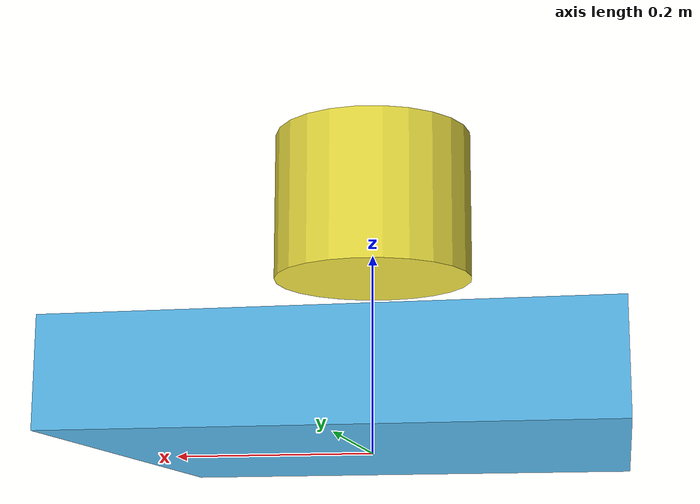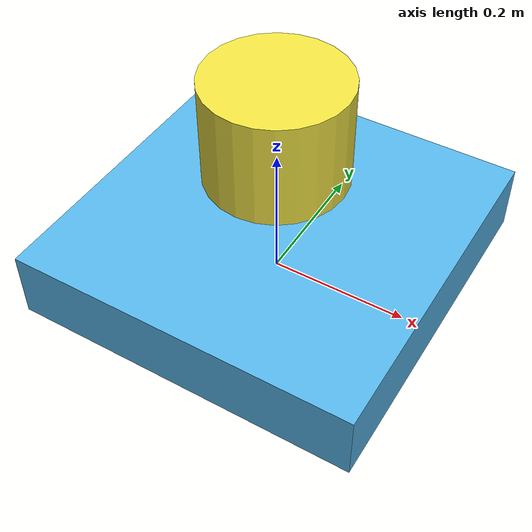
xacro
<?xml version="1.0"?>
<robot xmlns:xacro="http://www.ros.org/wiki/xacro" name="example">
  <xacro:arg name="gpu" default="false"/>
  <xacro:property name="gpu" value="$(arg gpu)" />

  <!-- Base Footprint -->
  <link name="base_footprint" />

  <!-- Base Link -->
  <joint name="footprint" type="fixed" >
   <parent link="base_footprint" />
    <child link="base_link" />
    <origin xyz="0 0 0.05" rpy="0 0 0" />
  </joint>
  <link name="base_link" >
    <visual>
      <geometry>
        <box size="0.5 0.5 0.1" />
      </geometry>
    </visual>
    <collision>
      <geometry>
        <box size="0.5 0.5 0.1" />
      </geometry>
    </collision>
    <inertial>
      <origin xyz="0 0 0"/>
      <mass value="10"/>
      <inertia ixx="3.0" ixy="0.0" ixz="0.0"
               iyy="3.0" iyz="0.0"
               izz="3.0" />
    </inertial>
  </link>

    <!-- Base RSLidar -->
    <joint name="rslidar" type="fixed" >
     <parent link="base_link" />
      <child link="base_rslidar" />
      <origin xyz="0 0 0.2" rpy="0 0 0" />
    </joint>

    <link name="base_rslidar" >
    </link>

    <xacro:include filename="$(find rslidar_sdk)/config/urdf/RSBPearl_raysim.urdf.xacro"/>
    <xacro:RSBPearl_raysim parent="base_rslidar" name="rslidar_optical_center" topic="/rslidar_points" hz="10" samples="1800" gpu="${gpu}">
      <origin xyz="0 0 0" rpy="0 0 0" />
    </xacro:RSBPearl_raysim>

</robot>

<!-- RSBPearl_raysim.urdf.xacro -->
<robot xmlns:xacro="http://www.ros.org/wiki/xacro" name="HDL-32E">
  <xacro:property name="M_PI" value="3.1415926535897931" />
  <xacro:macro name="RSBPearl_raysim" params="*origin parent:=base_link name:=RSBPearl topic:=/rslidar_points hz:=10 lasers:=32 samples:=1800 collision_range:=0.3 min_range:=0.1 max_range:=30.0 noise:=0.008 min_angle:=-${M_PI} max_angle:=${M_PI} gpu:=false">

    <joint name="${name}_base_mount_joint" type="fixed">
      <xacro:insert_block name="origin" />
      <parent link="${parent}"/>
      <child link="${name}"/>
    </joint>

    <link name="${name}">
      <inertial>
        <mass value="0.83"/>
        <origin xyz="0 0 0.03585"/>
        <inertia ixx="${(0.83 * (3.0*0.0516*0.0516 + 0.0717*0.0717)) / 12.0}" ixy="0" ixz="0"
          iyy="${(0.83 * (3.0*0.0516*0.0516 + 0.0717*0.0717)) / 12.0}" iyz="0"
          izz="${0.5 * 0.83 * (0.0516*0.0516)}"/>
      </inertial>
      <visual>
        <geometry>
          <cylinder radius="0.1" length="0.15" />
        </geometry>
      </visual>
    </link>

    <!-- Gazebo requires the velodyne_gazebo_plugins package -->
    <gazebo reference="${name}">
      <xacro:if value="${gpu}">
        <sensor type="gpu_ray" name="${name}">
          <pose>0 0 0 0 0 0</pose>
          <visualize>false</visualize>
          <update_rate>${hz}</update_rate>
          <ray>
            <scan>
              <horizontal>
                <samples>${samples}</samples>
                <resolution>1</resolution>
                <min_angle>${min_angle}</min_angle>
                <max_angle>${max_angle}</max_angle>
              </horizontal>
              <vertical>
                <samples>${lasers}</samples>
                <resolution>1</resolution>
                <min_angle>0</min_angle>
                <max_angle>${M_PI/2.0}</max_angle>
              </vertical>
            </scan>
            <range>
              <min>${collision_range}</min>
              <max>${max_range+1}</max>
              <resolution>0.001</resolution>
            </range>
            <noise>
              <type>gaussian</type>
              <mean>0.0</mean>
              <stddev>0.0</stddev>
            </noise>
          </ray>
          <plugin name="gazebo_ros_laser_controller" filename="libgazebo_ros_velodyne_gpu_laser.so">
            <topicName>${topic}</topicName>
            <frameName>${name}</frameName>
            <min_range>${min_range}</min_range>
            <max_range>${max_range}</max_range>
            <gaussianNoise>${noise}</gaussianNoise>
          </plugin>
        </sensor>
      </xacro:if>
      <xacro:unless value="${gpu}">
        <sensor type="ray" name="${name}">
          <pose>0 0 0 0 0 0</pose>
          <visualize>false</visualize>
          <update_rate>${hz}</update_rate>
          <ray>
            <scan>
              <horizontal>
                <samples>${samples}</samples>
                <resolution>1</resolution>
                <min_angle>${min_angle}</min_angle>
                <max_angle>${max_angle}</max_angle>
              </horizontal>
              <vertical>
                <samples>${lasers}</samples>
                <resolution>1</resolution>
                <min_angle>0</min_angle>
                <max_angle>${M_PI/2.0}</max_angle>
              </vertical>
            </scan>
            <range>
              <min>${collision_range}</min>
              <max>${max_range+1}</max>
              <resolution>0.001</resolution>
            </range>
            <noise>
              <type>gaussian</type>
              <mean>0.0</mean>
              <stddev>0.0</stddev>
            </noise>
          </ray>
          <plugin name="gazebo_ros_laser_controller" filename="libgazebo_ros_velodyne_laser.so">
            <topicName>${topic}</topicName>
            <frameName>${name}</frameName>
            <min_range>${min_range}</min_range>
            <max_range>${max_range}</max_range>
            <gaussianNoise>${noise}</gaussianNoise>
          </plugin>
        </sensor>
      </xacro:unless>
    </gazebo>

  </xacro:macro>
</robot>
